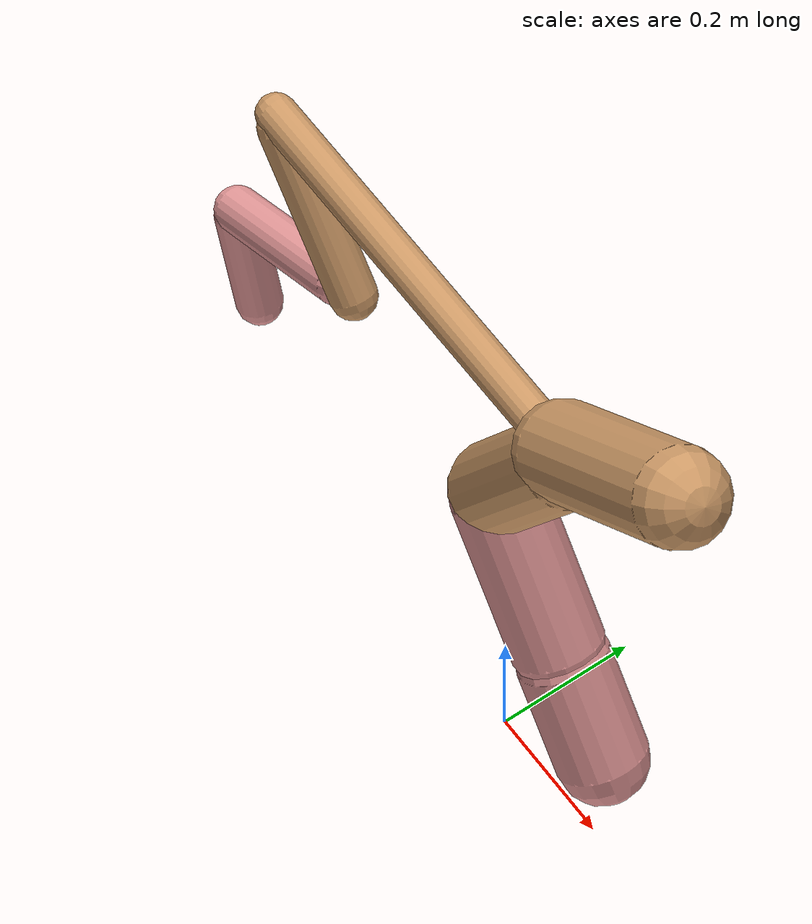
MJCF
<mujoco model="cheetah">
  <compiler angle="radian" coordinate="local" inertiafromgeom="true" settotalmass="14" />
  <default>
    <joint armature=".1" damping=".01" limited="true" solimplimit="0 .8 .03" solreflimit=".02 1" stiffness="8" />
    <geom conaffinity="0" condim="3" contype="1" friction="0.8 .1 .1" rgba="0.8 0.6 .4 1" solimp="0.0 0.8 0.01" solref="0.02 1" />
    <motor ctrllimited="true" ctrlrange="-1 1" />
  </default>
  <size nstack="300000" nuser_geom="1" />
  <option gravity="0 0 -9.81" timestep="0.01" />
  <worldbody>
    <body name="torso" pos="0.0 0.0 0.8300295352864907">
      <joint armature="0" axis="1 0 0" damping="0" limited="false" name="ignorex" pos="0 0 0" stiffness="0" type="slide" />
      <joint armature="0" axis="0 0 1" damping="0" limited="false" name="ignorez" pos="0 0 0" stiffness="0" type="slide" />
      <joint armature="0" axis="0 1 0" damping="0" limited="false" name="ignorey" pos="0 0 0" stiffness="0" type="hinge" />
      <geom fromto="-0.5 0.0 0.0 0.13154911546119002 0.0 0.0" name="torso" size="0.027469735977536377" type="capsule" />
      <geom axisangle="0 1 0 .87" name="head" pos="0.23154911546119006 0.0 0.1" size="0.0646565554121779 0.15" type="capsule" />

      <body name="bthigh" pos="-.5 0 0">
        <joint axis="0 1 0" damping="6" name="bthigh" pos="0 0 0" range="-.52 1.05" stiffness="240" type="hinge" />
        <geom axisangle="0 1 0 -3.8" name="bthigh" pos="0.08808208246821564 0.0 -0.11450670720868032" size="0.0322 0.1254531618973305" type="capsule" />
        <body name="bshin" pos="0.13616416493643127 0.0 -0.21901341441736064">
          <joint axis="0 1 0" damping="4.5" name="bshin" pos="0 0 0" range="-.785 .785" stiffness="180" type="hinge" />
          <geom axisangle="0 1 0 -2.03" name="bshin" pos="-0.12191390672713712 0.0 -0.06095695336356856" rgba="0.9 0.6 0.6 1" size="0.0322 0.12977913299723845" type="capsule" />
          <body name="bfoot" pos="-0.24382781345427423 0.0 -0.12191390672713712">
            <joint axis="0 1 0" damping="3" name="bfoot" pos="0 0 0" range="-.4 .785" stiffness="120" type="hinge" />
            <geom axisangle="0 1 0 -.27" name="bfoot" pos="0.02625588351178871 0.0 -0.0848940233547835" rgba="0.9 0.6 0.6 1" size="0.0322 0.08132825667826944" type="capsule" />
            <inertial mass="10" />
          </body>
        </body>
      </body>
      <body name="fthigh" pos="0.13154911546119008 0.0 0.0">
        <joint axis="0 1 0" damping="4.5" name="fthigh" pos="0 0 0" range="-1.5 0.8" stiffness="180" type="hinge" />
        <geom axisangle="0 1 0 .52" name="fthigh" pos="-0.07911496792259294 0.0 -0.1356256592958736" size="0.06309657962575985 0.15108988304717913" type="capsule" />
        <body name="fshin" pos="-0.15822993584518588 0.0 -0.2712513185917472">
          <joint axis="0 1 0" damping="3" name="fshin" pos="0 0 0" range="-1.2 1.1" stiffness="120" type="hinge" />
          <geom axisangle="0 1 0 -.6" name="fshin" pos="0.0734413105134804 0.0 -0.10168796840328057" rgba="0.9 0.6 0.6 1" size="0.06309657962575985 0.12041750077444352" type="capsule" />
          <body name="ffoot" pos="0.1468826210269608 0.0 -0.20337593680656113">
            <joint axis="0 1 0" damping="1.5" name="ffoot" pos="0 0 0" range="-3.1 -0.3" stiffness="60" type="hinge" />
            <geom axisangle="0 1 0 -.6" name="ffoot" pos="0.05014854820196605 0.0 -0.07800885275861386" rgba="0.9 0.6 0.6 1" size="0.06309657962575985 0.07952099107746272" type="capsule" />
            <inertial mass="10" />
          </body>
        </body>
      </body>
    </body>
  </worldbody>
  <actuator>
    <motor gear="120" joint="bthigh" name="bthigh" />
    <motor gear="90" joint="bshin" name="bshin" />
    <motor gear="60" joint="bfoot" name="bfoot" />
    <motor gear="120" joint="fthigh" name="fthigh" />
    <motor gear="60" joint="fshin" name="fshin" />
    <motor gear="30" joint="ffoot" name="ffoot" />
  </actuator>
</mujoco>
